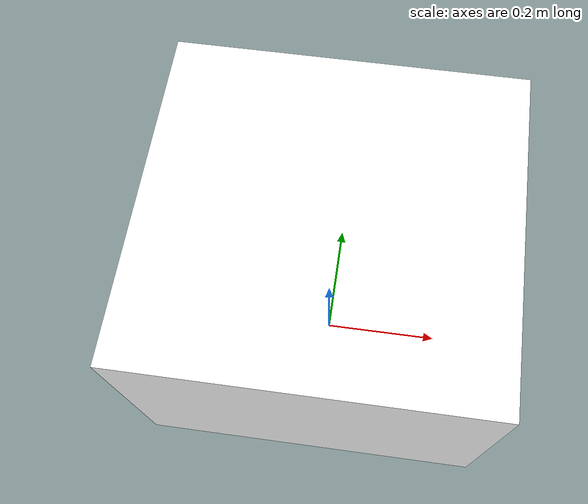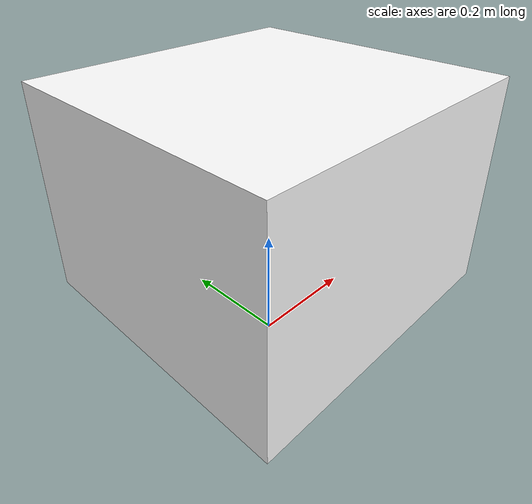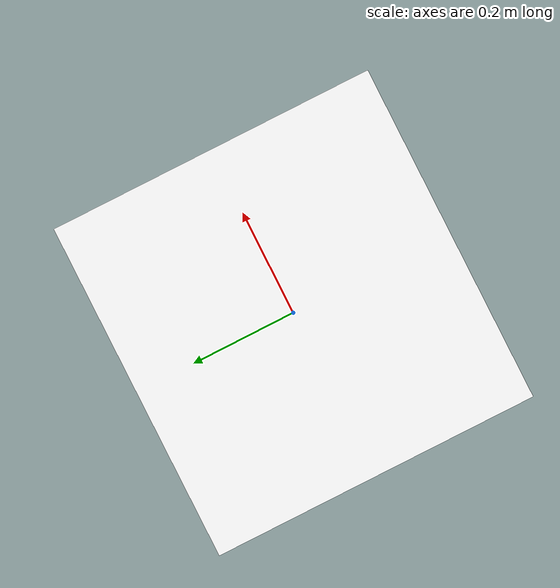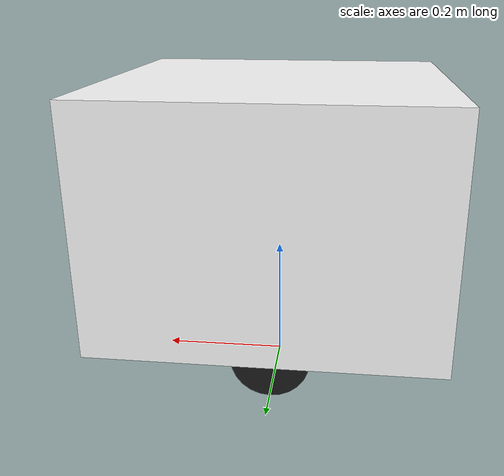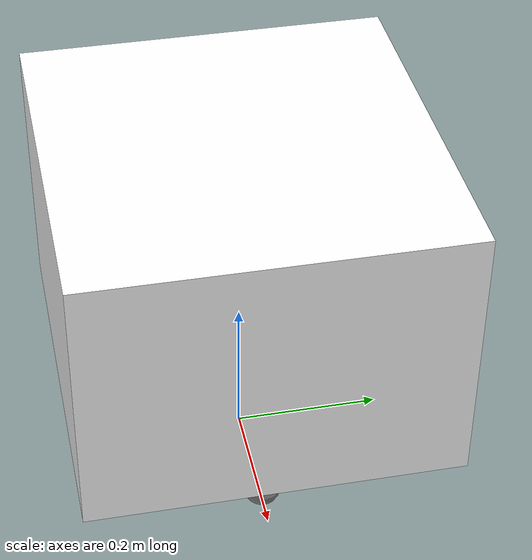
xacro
<?xml version="1.0"?>
<robot xmlns:xacro="http://www.ros.org/wiki/xacro" name="roo">

    <xacro:property name="ref_height" value="0.1151"/>
    <xacro:property name="shell_l" value="0.520"/>
    <xacro:property name="shell_w" value="0.500"/>
    <xacro:property name="shell_h" value="0.368"/>

    <xacro:property name="wheel_radius" value="0.0625"/>
    <xacro:property name="track_width" value="0.280"/>
    <xacro:property name="axle_z_offset" value="-0.0526"/>

    <link name="base_footprint"/>

    <joint name="base_joint" type="fixed">
        <parent link="base_footprint"/>
        <child link="base_link"/>
        <origin xyz="0 0 ${ref_height}" rpy="0 0 0"/>
    </joint>

    <link name="base_link"/>

    <xacro:macro name="wheel" params="prefix y_reflect">
        <link name="${prefix}_wheel">
            <visual>
                <origin xyz="0 0 0" rpy="${pi/2} 0 0"/>
                <geometry>
                    <cylinder radius="${wheel_radius}" length="0.0172"/>
                </geometry>
                <material name="black"><color rgba="0.1 0.1 0.1 1"/></material>
            </visual>
        </link>

        <joint name="${prefix}_wheel_joint" type="continuous">
            <parent link="base_link"/>
            <child link="${prefix}_wheel"/>
            <origin xyz="0 ${y_reflect * (track_width/2)} ${axle_z_offset}" rpy="0 0 0"/>
            <axis xyz="0 1 0"/>
        </joint>
    </xacro:macro>

    <xacro:wheel prefix="left" y_reflect="1" />
    <xacro:wheel prefix="right" y_reflect="-1" />

    <xacro:macro name="caster" params="prefix x_reflect">
        <link name="${prefix}_caster">
            <visual>
                <geometry><sphere radius="0.025"/></geometry>
                <material name="grey"><color rgba="0.5 0.5 0.5 1"/></material>
            </visual>
        </link>
        <joint name="${prefix}_caster_joint" type="fixed">
            <parent link="base_link"/>
            <child link="${prefix}_caster"/>
            <origin xyz="${x_reflect * 0.160} 0 -0.0901" rpy="0 0 0"/>
        </joint>
    </xacro:macro>

    <xacro:caster prefix="front" x_reflect="1" />
    <xacro:caster prefix="back" x_reflect="-1" />

    <link name="laser_frame"/>
    <joint name="laser_joint" type="fixed">
        <parent link="base_link"/>
        <child link="laser_frame"/>
        <origin xyz="0 0 0.300" rpy="0 0 0"/>
    </joint>

    <link name="imu_link"/>
    <joint name="imu_joint" type="fixed">
        <parent link="base_link"/>
        <child link="imu_link"/>
        <origin xyz="0 0 -0.090" rpy="0 0 0"/>
    </joint>

    <link name="chassis_visual">
        <visual>
            <origin xyz="0 0 ${shell_h/2}" rpy="0 0 0"/>
            <geometry><box size="${shell_l} ${shell_w} ${shell_h}"/></geometry>
            <material name="white"><color rgba="1 1 1 1"/></material>
        </visual>
    </link>
    <joint name="chassis_joint" type="fixed">
        <parent link="base_link"/>
        <child link="chassis_visual"/>
        <origin xyz="0 0 0" rpy="0 0 0"/>
    </joint>
    <link name="oakd_frame"/>
    <joint name="oakd_joint" type="fixed">
        <parent link="base_link"/>
        <child link="oakd_frame"/>
        <origin xyz="0 0 0.280" rpy="0 0.2618 0"/>
    </joint>

</robot>
